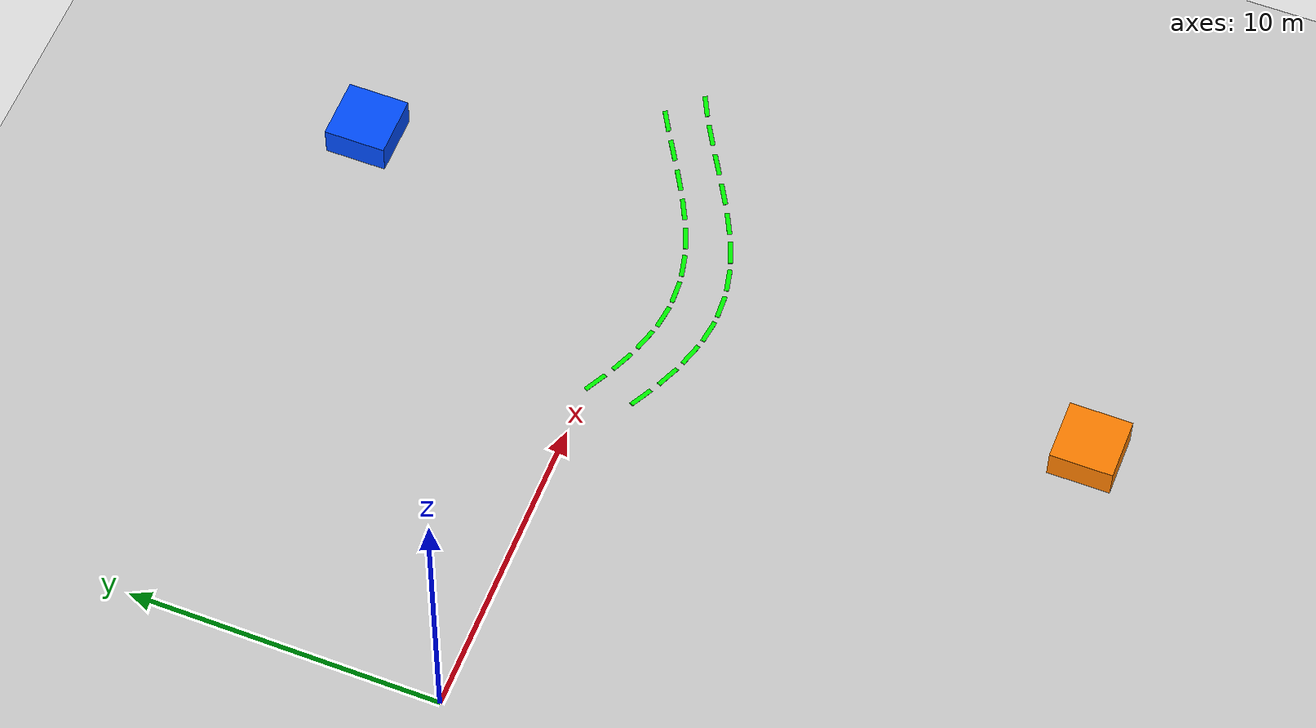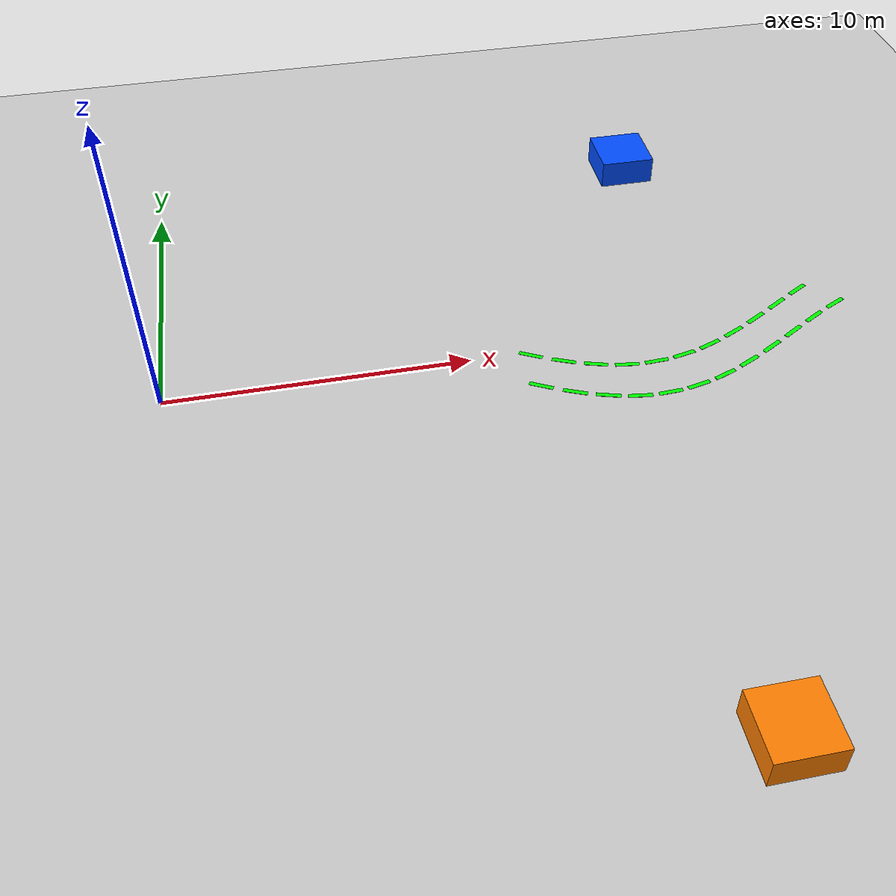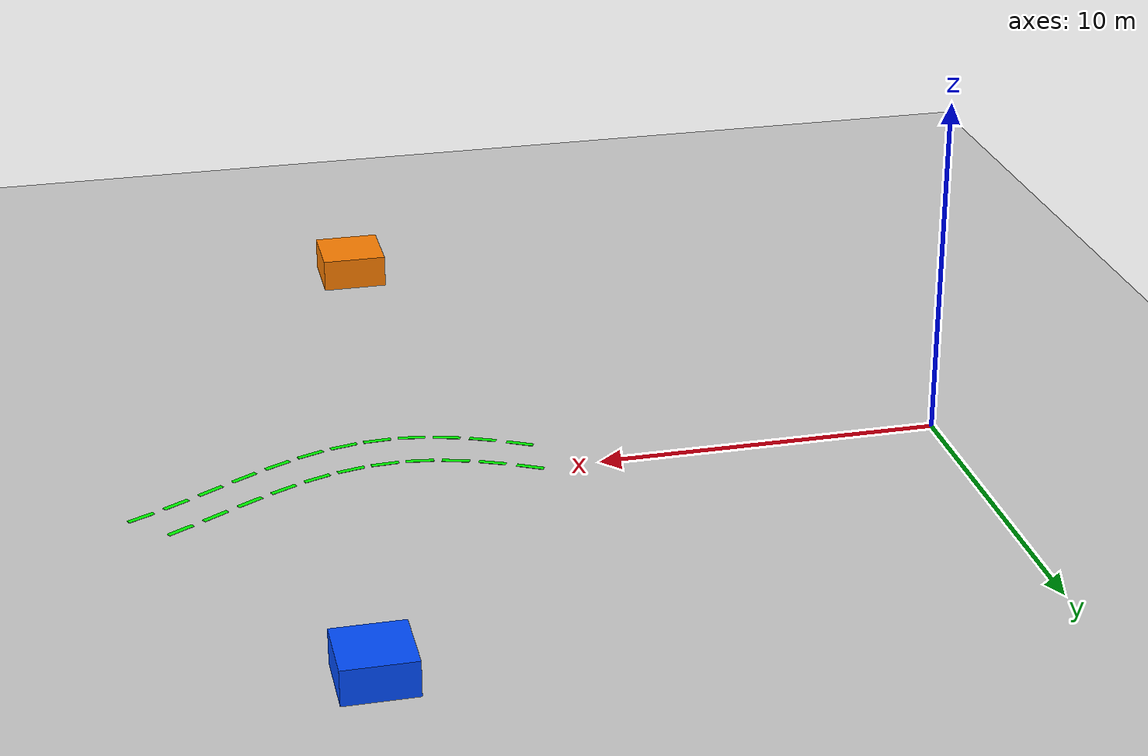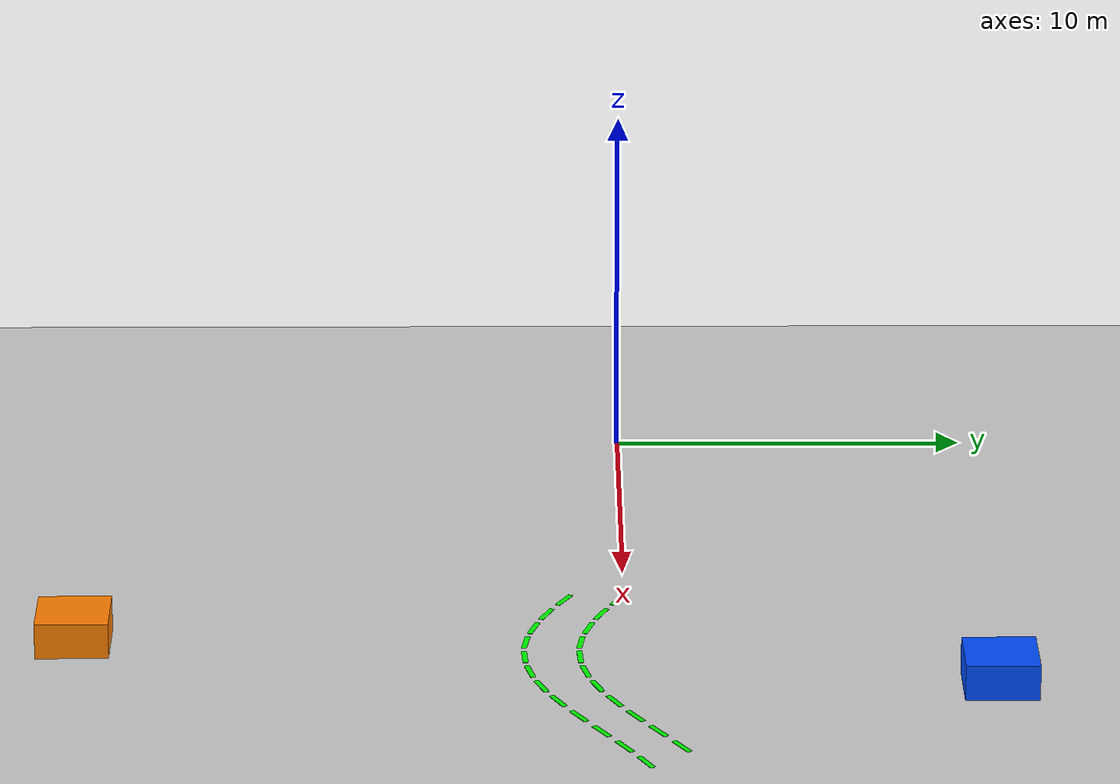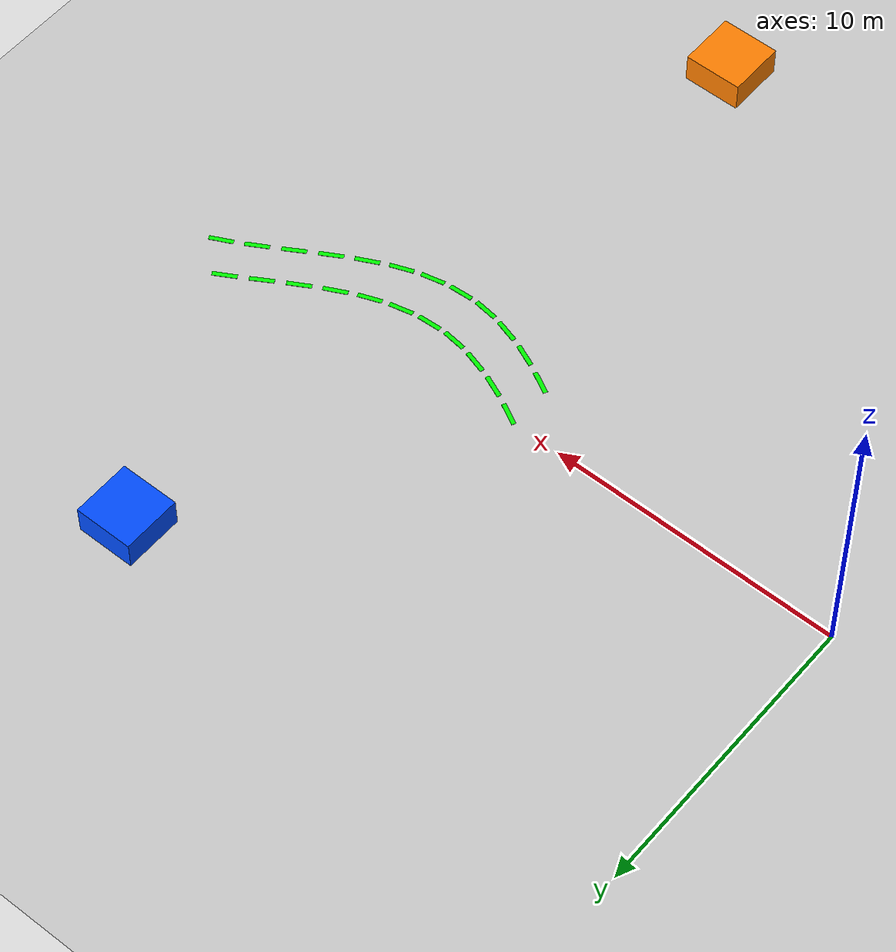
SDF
<sdf version="1.6">
 <world name="curved_lane_world">
  <include><uri>model://sun</uri></include>
  <include><uri>model://ground_plane</uri></include>
  <model name="lane_seg_12_left">
   <static>true</static>
   <pose>12.00 -1.64 0 0 0 -0.49</pose>
   <link name="lane_link_12_left">
    <visual name="segment">
     <pose>0 0 0.02 0 0 0</pose>
     <geometry><box><size>0.8 0.15 0.01</size></box></geometry>
     <material><ambient>0 1 0 1</ambient><diffuse>0 1 0 1</diffuse></material>
    </visual>
   </link>
  </model>
  <model name="lane_seg_12_right">
   <static>true</static>
   <pose>12.00 -0.14 0 0 0 -0.49</pose>
   <link name="lane_link_12_right">
    <visual name="segment">
     <pose>0 0 0.02 0 0 0</pose>
     <geometry><box><size>0.8 0.15 0.01</size></box></geometry>
     <material><ambient>0 1 0 1</ambient><diffuse>0 1 0 1</diffuse></material>
    </visual>
   </link>
  </model>
  <model name="lane_seg_13_left">
   <static>true</static>
   <pose>13.00 -2.13 0 0 0 -0.41</pose>
   <link name="lane_link_13_left">
    <visual name="segment">
     <pose>0 0 0.02 0 0 0</pose>
     <geometry><box><size>0.8 0.15 0.01</size></box></geometry>
     <material><ambient>0 1 0 1</ambient><diffuse>0 1 0 1</diffuse></material>
    </visual>
   </link>
  </model>
  <model name="lane_seg_13_right">
   <static>true</static>
   <pose>13.00 -0.63 0 0 0 -0.41</pose>
   <link name="lane_link_13_right">
    <visual name="segment">
     <pose>0 0 0.02 0 0 0</pose>
     <geometry><box><size>0.8 0.15 0.01</size></box></geometry>
     <material><ambient>0 1 0 1</ambient><diffuse>0 1 0 1</diffuse></material>
    </visual>
   </link>
  </model>
  <model name="lane_seg_14_left">
   <static>true</static>
   <pose>14.00 -2.49 0 0 0 -0.29</pose>
   <link name="lane_link_14_left">
    <visual name="segment">
     <pose>0 0 0.02 0 0 0</pose>
     <geometry><box><size>0.8 0.15 0.01</size></box></geometry>
     <material><ambient>0 1 0 1</ambient><diffuse>0 1 0 1</diffuse></material>
    </visual>
   </link>
  </model>
  <model name="lane_seg_14_right">
   <static>true</static>
   <pose>14.00 -0.99 0 0 0 -0.29</pose>
   <link name="lane_link_14_right">
    <visual name="segment">
     <pose>0 0 0.02 0 0 0</pose>
     <geometry><box><size>0.8 0.15 0.01</size></box></geometry>
     <material><ambient>0 1 0 1</ambient><diffuse>0 1 0 1</diffuse></material>
    </visual>
   </link>
  </model>
  <model name="lane_seg_15_left">
   <static>true</static>
   <pose>15.00 -2.71 0 0 0 -0.13</pose>
   <link name="lane_link_15_left">
    <visual name="segment">
     <pose>0 0 0.02 0 0 0</pose>
     <geometry><box><size>0.8 0.15 0.01</size></box></geometry>
     <material><ambient>0 1 0 1</ambient><diffuse>0 1 0 1</diffuse></material>
    </visual>
   </link>
  </model>
  <model name="lane_seg_15_right">
   <static>true</static>
   <pose>15.00 -1.21 0 0 0 -0.13</pose>
   <link name="lane_link_15_right">
    <visual name="segment">
     <pose>0 0 0.02 0 0 0</pose>
     <geometry><box><size>0.8 0.15 0.01</size></box></geometry>
     <material><ambient>0 1 0 1</ambient><diffuse>0 1 0 1</diffuse></material>
    </visual>
   </link>
  </model>
  <model name="lane_seg_16_left">
   <static>true</static>
   <pose>16.00 -2.74 0 0 0 0.05</pose>
   <link name="lane_link_16_left">
    <visual name="segment">
     <pose>0 0 0.02 0 0 0</pose>
     <geometry><box><size>0.8 0.15 0.01</size></box></geometry>
     <material><ambient>0 1 0 1</ambient><diffuse>0 1 0 1</diffuse></material>
    </visual>
   </link>
  </model>
  <model name="lane_seg_16_right">
   <static>true</static>
   <pose>16.00 -1.24 0 0 0 0.05</pose>
   <link name="lane_link_16_right">
    <visual name="segment">
     <pose>0 0 0.02 0 0 0</pose>
     <geometry><box><size>0.8 0.15 0.01</size></box></geometry>
     <material><ambient>0 1 0 1</ambient><diffuse>0 1 0 1</diffuse></material>
    </visual>
   </link>
  </model>
  <model name="lane_seg_17_left">
   <static>true</static>
   <pose>17.00 -2.60 0 0 0 0.22</pose>
   <link name="lane_link_17_left">
    <visual name="segment">
     <pose>0 0 0.02 0 0 0</pose>
     <geometry><box><size>0.8 0.15 0.01</size></box></geometry>
     <material><ambient>0 1 0 1</ambient><diffuse>0 1 0 1</diffuse></material>
    </visual>
   </link>
  </model>
  <model name="lane_seg_17_right">
   <static>true</static>
   <pose>17.00 -1.10 0 0 0 0.22</pose>
   <link name="lane_link_17_right">
    <visual name="segment">
     <pose>0 0 0.02 0 0 0</pose>
     <geometry><box><size>0.8 0.15 0.01</size></box></geometry>
     <material><ambient>0 1 0 1</ambient><diffuse>0 1 0 1</diffuse></material>
    </visual>
   </link>
  </model>
  <model name="lane_seg_18_left">
   <static>true</static>
   <pose>18.00 -2.30 0 0 0 0.36</pose>
   <link name="lane_link_18_left">
    <visual name="segment">
     <pose>0 0 0.02 0 0 0</pose>
     <geometry><box><size>0.8 0.15 0.01</size></box></geometry>
     <material><ambient>0 1 0 1</ambient><diffuse>0 1 0 1</diffuse></material>
    </visual>
   </link>
  </model>
  <model name="lane_seg_18_right">
   <static>true</static>
   <pose>18.00 -0.80 0 0 0 0.36</pose>
   <link name="lane_link_18_right">
    <visual name="segment">
     <pose>0 0 0.02 0 0 0</pose>
     <geometry><box><size>0.8 0.15 0.01</size></box></geometry>
     <material><ambient>0 1 0 1</ambient><diffuse>0 1 0 1</diffuse></material>
    </visual>
   </link>
  </model>
  <model name="lane_seg_19_left">
   <static>true</static>
   <pose>19.00 -1.85 0 0 0 0.46</pose>
   <link name="lane_link_19_left">
    <visual name="segment">
     <pose>0 0 0.02 0 0 0</pose>
     <geometry><box><size>0.8 0.15 0.01</size></box></geometry>
     <material><ambient>0 1 0 1</ambient><diffuse>0 1 0 1</diffuse></material>
    </visual>
   </link>
  </model>
  <model name="lane_seg_19_right">
   <static>true</static>
   <pose>19.00 -0.35 0 0 0 0.46</pose>
   <link name="lane_link_19_right">
    <visual name="segment">
     <pose>0 0 0.02 0 0 0</pose>
     <geometry><box><size>0.8 0.15 0.01</size></box></geometry>
     <material><ambient>0 1 0 1</ambient><diffuse>0 1 0 1</diffuse></material>
    </visual>
   </link>
  </model>
  <model name="lane_seg_20_left">
   <static>true</static>
   <pose>20.00 -1.31 0 0 0 0.52</pose>
   <link name="lane_link_20_left">
    <visual name="segment">
     <pose>0 0 0.02 0 0 0</pose>
     <geometry><box><size>0.8 0.15 0.01</size></box></geometry>
     <material><ambient>0 1 0 1</ambient><diffuse>0 1 0 1</diffuse></material>
    </visual>
   </link>
  </model>
  <model name="lane_seg_20_right">
   <static>true</static>
   <pose>20.00 0.19 0 0 0 0.52</pose>
   <link name="lane_link_20_right">
    <visual name="segment">
     <pose>0 0 0.02 0 0 0</pose>
     <geometry><box><size>0.8 0.15 0.01</size></box></geometry>
     <material><ambient>0 1 0 1</ambient><diffuse>0 1 0 1</diffuse></material>
    </visual>
   </link>
  </model>
  <model name="lane_seg_21_left">
   <static>true</static>
   <pose>21.00 -0.72 0 0 0 0.54</pose>
   <link name="lane_link_21_left">
    <visual name="segment">
     <pose>0 0 0.02 0 0 0</pose>
     <geometry><box><size>0.8 0.15 0.01</size></box></geometry>
     <material><ambient>0 1 0 1</ambient><diffuse>0 1 0 1</diffuse></material>
    </visual>
   </link>
  </model>
  <model name="lane_seg_21_right">
   <static>true</static>
   <pose>21.00 0.78 0 0 0 0.54</pose>
   <link name="lane_link_21_right">
    <visual name="segment">
     <pose>0 0 0.02 0 0 0</pose>
     <geometry><box><size>0.8 0.15 0.01</size></box></geometry>
     <material><ambient>0 1 0 1</ambient><diffuse>0 1 0 1</diffuse></material>
    </visual>
   </link>
  </model>
  <model name="lane_seg_22_left">
   <static>true</static>
   <pose>22.00 -0.13 0 0 0 0.52</pose>
   <link name="lane_link_22_left">
    <visual name="segment">
     <pose>0 0 0.02 0 0 0</pose>
     <geometry><box><size>0.8 0.15 0.01</size></box></geometry>
     <material><ambient>0 1 0 1</ambient><diffuse>0 1 0 1</diffuse></material>
    </visual>
   </link>
  </model>
  <model name="lane_seg_22_right">
   <static>true</static>
   <pose>22.00 1.37 0 0 0 0.52</pose>
   <link name="lane_link_22_right">
    <visual name="segment">
     <pose>0 0 0.02 0 0 0</pose>
     <geometry><box><size>0.8 0.15 0.01</size></box></geometry>
     <material><ambient>0 1 0 1</ambient><diffuse>0 1 0 1</diffuse></material>
    </visual>
   </link>
  </model>
  <model name="lane_seg_23_left">
   <static>true</static>
   <pose>23.00 0.41 0 0 0 0.46</pose>
   <link name="lane_link_23_left">
    <visual name="segment">
     <pose>0 0 0.02 0 0 0</pose>
     <geometry><box><size>0.8 0.15 0.01</size></box></geometry>
     <material><ambient>0 1 0 1</ambient><diffuse>0 1 0 1</diffuse></material>
    </visual>
   </link>
  </model>
  <model name="building_orange">
   <static>true</static>
   <pose>15 -15 0.5 0 0 0</pose>
   <link name="link">
    <collision name="collision"><geometry><box><size>2 2 1</size></box></geometry></collision>
    <visual name="visual">
     <geometry><box><size>2 2 1</size></box></geometry>
     <material><ambient>1.0 0.5 0.0 1</ambient><diffuse>1.0 0.5 0.0 1</diffuse></material>
    </visual>
   </link>
  </model>
  <model name="building_blue">
   <static>true</static>
   <pose>18 10 0.5 0 0 0</pose>
   <link name="link">
    <collision name="collision"><geometry><box><size>2 2 1</size></box></geometry></collision>
    <visual name="visual">
     <geometry><box><size>2 2 1</size></box></geometry>
     <material><ambient>0.0 0.3 1.0 1</ambient><diffuse>0.0 0.3 1.0 1</diffuse></material>
    </visual>
   </link>
  </model>
 </world>
</sdf>
